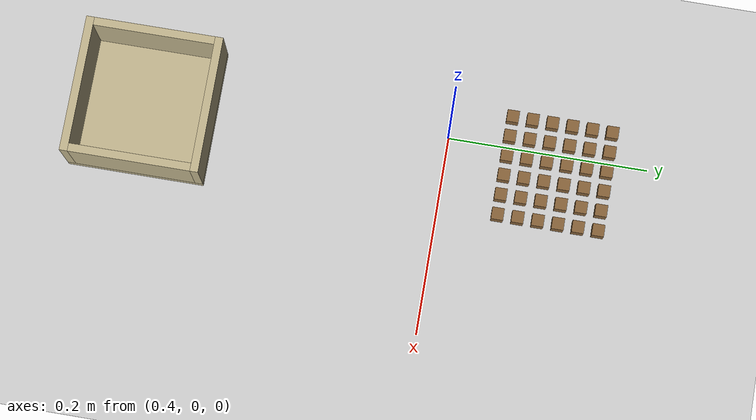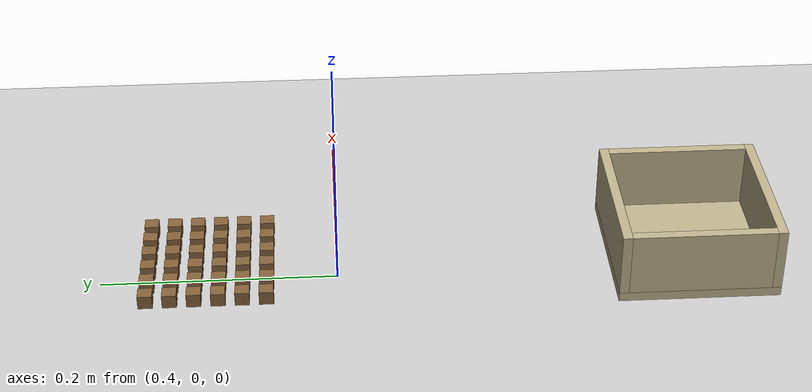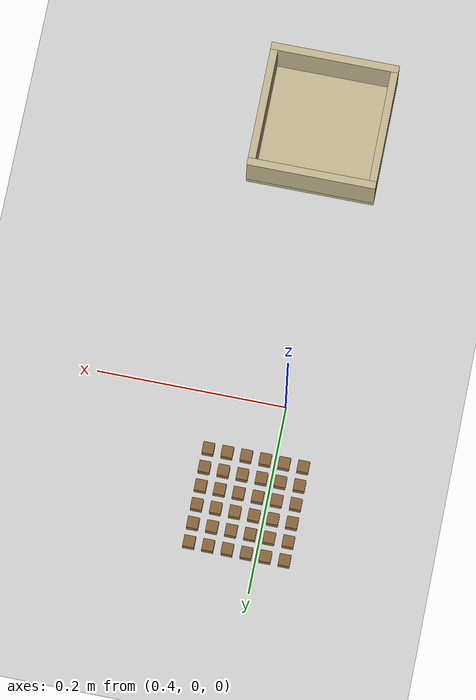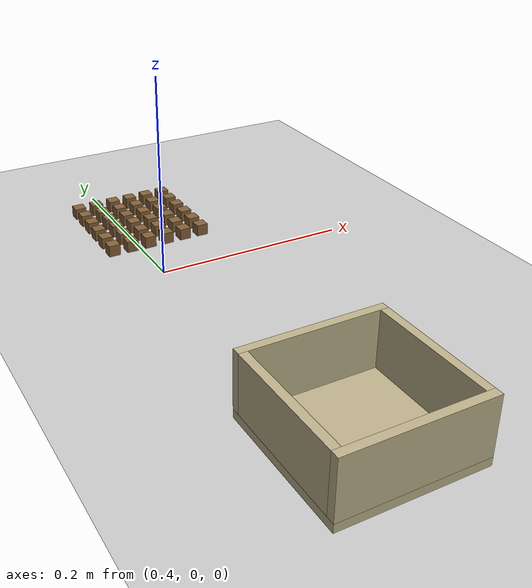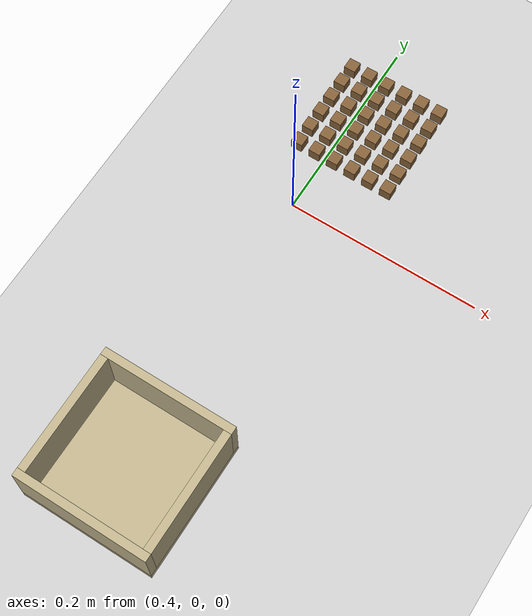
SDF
<sdf version='1.10'>
  <world name='empty'>
    <physics name='1ms' type='ode'>
      <max_step_size>0.001</max_step_size>
      <real_time_factor>1</real_time_factor>
      <real_time_update_rate>1000</real_time_update_rate>
    </physics>
    <plugin name='gz::sim::systems::Physics' filename='gz-sim-physics-system'/>
    <plugin name='gz::sim::systems::UserCommands' filename='gz-sim-user-commands-system'/>
    <plugin filename='gz-sim-imu-system' name='gz::sim::systems::Imu'/>
    <plugin name='gz::sim::systems::SceneBroadcaster' filename='gz-sim-scene-broadcaster-system'/>
    <plugin name='gz::sim::systems::Contact' filename='gz-sim-contact-system'/>
    <plugin name='gz::sim::systems::Sensors' filename='gz-sim-sensors-system'>
      <render_engine>ogre2</render_engine>
    </plugin>
    <gravity>0 0 -9.8000000000000007</gravity>
    <magnetic_field>5.5644999999999998e-06 2.2875799999999999e-05 -4.2388400000000002e-05</magnetic_field>
    <atmosphere type='adiabatic'/>
    <scene>
      <ambient>0.400000006 0.400000006 0.400000006 1</ambient>
      <background>0.699999988 0.699999988 0.699999988 1</background>
      <shadows>true</shadows>
    </scene>
    <model name='ground_plane'>
      <static>true</static>
      <link name='link'>
        <collision name='collision'>
          <geometry><plane><normal>0 0 1</normal><size>100 100</size></plane></geometry>
          <surface>
            <friction>
              <ode>
                <mu>0.75</mu>
                <mu2>0.75</mu2>
              </ode>
            </friction>
            <bounce>
              <restitution_coefficient>0.0</restitution_coefficient>
            </bounce>
            <contact/>
          </surface>
        </collision>
        <visual name='visual'>
          <geometry><plane><normal>0 0 1</normal><size>100 100</size></plane></geometry>
          <material>
            <ambient>0.800000012 0.800000012 0.800000012 1</ambient>
            <diffuse>0.800000012 0.800000012 0.800000012 1</diffuse>
            <specular>0.800000012 0.800000012 0.800000012 1</specular>
          </material>
        </visual>
        <pose>0 0 0 0 0 0</pose>
        <inertial>
          <pose>0 0 0 0 0 0</pose>
          <mass>1</mass>
          <inertia><ixx>1</ixx><ixy>0</ixy><ixz>0</ixz>
                   <iyy>1</iyy><iyz>0</iyz><izz>1</izz></inertia>
        </inertial>
        <enable_wind>false</enable_wind>
      </link>
      <pose>0 0 0 0 0 0</pose>
      <self_collide>false</self_collide>
    </model>
    <model name='soil_grain_00'>
      <pose>0.3700 0.0600 0.0070 0 0 0</pose>
      <link name='grain'>
        <inertial>
          <mass>0.003</mass>
          <inertia><ixx>7.200e-08</ixx><ixy>0</ixy><ixz>0</ixz>
                   <iyy>7.200e-08</iyy><iyz>0</iyz><izz>7.200e-08</izz></inertia>
        </inertial>
        <collision name='grain_collision'>
          <geometry><box><size>0.012 0.012 0.012</size></box></geometry>
          <surface>
            <friction><ode><mu>1.1</mu><mu2>1.1</mu2></ode></friction>
            <bounce><restitution_coefficient>0.0</restitution_coefficient></bounce>
            <contact/>
          </surface>
        </collision>
        <visual name='grain_visual'>
          <geometry><box><size>0.012 0.012 0.012</size></box></geometry>
          <material>
            <ambient>0.42 0.31 0.18 1</ambient>
            <diffuse>0.52 0.38 0.22 1</diffuse>
            <specular>0.05 0.05 0.05 1</specular>
          </material>
        </visual>
        <enable_wind>false</enable_wind>
      </link>
      <self_collide>true</self_collide>
    </model>
    <model name='soil_grain_01'>
      <pose>0.3700 0.0800 0.0070 0 0 0</pose>
      <link name='grain'>
        <inertial>
          <mass>0.003</mass>
          <inertia><ixx>7.200e-08</ixx><ixy>0</ixy><ixz>0</ixz>
                   <iyy>7.200e-08</iyy><iyz>0</iyz><izz>7.200e-08</izz></inertia>
        </inertial>
        <collision name='grain_collision'>
          <geometry><box><size>0.012 0.012 0.012</size></box></geometry>
          <surface>
            <friction><ode><mu>1.1</mu><mu2>1.1</mu2></ode></friction>
            <bounce><restitution_coefficient>0.0</restitution_coefficient></bounce>
            <contact/>
          </surface>
        </collision>
        <visual name='grain_visual'>
          <geometry><box><size>0.012 0.012 0.012</size></box></geometry>
          <material>
            <ambient>0.42 0.31 0.18 1</ambient>
            <diffuse>0.52 0.38 0.22 1</diffuse>
            <specular>0.05 0.05 0.05 1</specular>
          </material>
        </visual>
        <enable_wind>false</enable_wind>
      </link>
      <self_collide>true</self_collide>
    </model>
    <model name='soil_grain_02'>
      <pose>0.3700 0.1000 0.0070 0 0 0</pose>
      <link name='grain'>
        <inertial>
          <mass>0.003</mass>
          <inertia><ixx>7.200e-08</ixx><ixy>0</ixy><ixz>0</ixz>
                   <iyy>7.200e-08</iyy><iyz>0</iyz><izz>7.200e-08</izz></inertia>
        </inertial>
        <collision name='grain_collision'>
          <geometry><box><size>0.012 0.012 0.012</size></box></geometry>
          <surface>
            <friction><ode><mu>1.1</mu><mu2>1.1</mu2></ode></friction>
            <bounce><restitution_coefficient>0.0</restitution_coefficient></bounce>
            <contact/>
          </surface>
        </collision>
        <visual name='grain_visual'>
          <geometry><box><size>0.012 0.012 0.012</size></box></geometry>
          <material>
            <ambient>0.42 0.31 0.18 1</ambient>
            <diffuse>0.52 0.38 0.22 1</diffuse>
            <specular>0.05 0.05 0.05 1</specular>
          </material>
        </visual>
        <enable_wind>false</enable_wind>
      </link>
      <self_collide>true</self_collide>
    </model>
    <model name='soil_grain_03'>
      <pose>0.3700 0.1200 0.0070 0 0 0</pose>
      <link name='grain'>
        <inertial>
          <mass>0.003</mass>
          <inertia><ixx>7.200e-08</ixx><ixy>0</ixy><ixz>0</ixz>
                   <iyy>7.200e-08</iyy><iyz>0</iyz><izz>7.200e-08</izz></inertia>
        </inertial>
        <collision name='grain_collision'>
          <geometry><box><size>0.012 0.012 0.012</size></box></geometry>
          <surface>
            <friction><ode><mu>1.1</mu><mu2>1.1</mu2></ode></friction>
            <bounce><restitution_coefficient>0.0</restitution_coefficient></bounce>
            <contact/>
          </surface>
        </collision>
        <visual name='grain_visual'>
          <geometry><box><size>0.012 0.012 0.012</size></box></geometry>
          <material>
            <ambient>0.42 0.31 0.18 1</ambient>
            <diffuse>0.52 0.38 0.22 1</diffuse>
            <specular>0.05 0.05 0.05 1</specular>
          </material>
        </visual>
        <enable_wind>false</enable_wind>
      </link>
      <self_collide>true</self_collide>
    </model>
    <model name='soil_grain_04'>
      <pose>0.3700 0.1400 0.0070 0 0 0</pose>
      <link name='grain'>
        <inertial>
          <mass>0.003</mass>
          <inertia><ixx>7.200e-08</ixx><ixy>0</ixy><ixz>0</ixz>
                   <iyy>7.200e-08</iyy><iyz>0</iyz><izz>7.200e-08</izz></inertia>
        </inertial>
        <collision name='grain_collision'>
          <geometry><box><size>0.012 0.012 0.012</size></box></geometry>
          <surface>
            <friction><ode><mu>1.1</mu><mu2>1.1</mu2></ode></friction>
            <bounce><restitution_coefficient>0.0</restitution_coefficient></bounce>
            <contact/>
          </surface>
        </collision>
        <visual name='grain_visual'>
          <geometry><box><size>0.012 0.012 0.012</size></box></geometry>
          <material>
            <ambient>0.42 0.31 0.18 1</ambient>
            <diffuse>0.52 0.38 0.22 1</diffuse>
            <specular>0.05 0.05 0.05 1</specular>
          </material>
        </visual>
        <enable_wind>false</enable_wind>
      </link>
      <self_collide>true</self_collide>
    </model>
    <model name='soil_grain_05'>
      <pose>0.3700 0.1600 0.0070 0 0 0</pose>
      <link name='grain'>
        <inertial>
          <mass>0.003</mass>
          <inertia><ixx>7.200e-08</ixx><ixy>0</ixy><ixz>0</ixz>
                   <iyy>7.200e-08</iyy><iyz>0</iyz><izz>7.200e-08</izz></inertia>
        </inertial>
        <collision name='grain_collision'>
          <geometry><box><size>0.012 0.012 0.012</size></box></geometry>
          <surface>
            <friction><ode><mu>1.1</mu><mu2>1.1</mu2></ode></friction>
            <bounce><restitution_coefficient>0.0</restitution_coefficient></bounce>
            <contact/>
          </surface>
        </collision>
        <visual name='grain_visual'>
          <geometry><box><size>0.012 0.012 0.012</size></box></geometry>
          <material>
            <ambient>0.42 0.31 0.18 1</ambient>
            <diffuse>0.52 0.38 0.22 1</diffuse>
            <specular>0.05 0.05 0.05 1</specular>
          </material>
        </visual>
        <enable_wind>false</enable_wind>
      </link>
      <self_collide>true</self_collide>
    </model>
    <model name='soil_grain_06'>
      <pose>0.3900 0.0600 0.0070 0 0 0</pose>
      <link name='grain'>
        <inertial>
          <mass>0.003</mass>
          <inertia><ixx>7.200e-08</ixx><ixy>0</ixy><ixz>0</ixz>
                   <iyy>7.200e-08</iyy><iyz>0</iyz><izz>7.200e-08</izz></inertia>
        </inertial>
        <collision name='grain_collision'>
          <geometry><box><size>0.012 0.012 0.012</size></box></geometry>
          <surface>
            <friction><ode><mu>1.1</mu><mu2>1.1</mu2></ode></friction>
            <bounce><restitution_coefficient>0.0</restitution_coefficient></bounce>
            <contact/>
          </surface>
        </collision>
        <visual name='grain_visual'>
          <geometry><box><size>0.012 0.012 0.012</size></box></geometry>
          <material>
            <ambient>0.42 0.31 0.18 1</ambient>
            <diffuse>0.52 0.38 0.22 1</diffuse>
            <specular>0.05 0.05 0.05 1</specular>
          </material>
        </visual>
        <enable_wind>false</enable_wind>
      </link>
      <self_collide>true</self_collide>
    </model>
    <model name='soil_grain_07'>
      <pose>0.3900 0.0800 0.0070 0 0 0</pose>
      <link name='grain'>
        <inertial>
          <mass>0.003</mass>
          <inertia><ixx>7.200e-08</ixx><ixy>0</ixy><ixz>0</ixz>
                   <iyy>7.200e-08</iyy><iyz>0</iyz><izz>7.200e-08</izz></inertia>
        </inertial>
        <collision name='grain_collision'>
          <geometry><box><size>0.012 0.012 0.012</size></box></geometry>
          <surface>
            <friction><ode><mu>1.1</mu><mu2>1.1</mu2></ode></friction>
            <bounce><restitution_coefficient>0.0</restitution_coefficient></bounce>
            <contact/>
          </surface>
        </collision>
        <visual name='grain_visual'>
          <geometry><box><size>0.012 0.012 0.012</size></box></geometry>
          <material>
            <ambient>0.42 0.31 0.18 1</ambient>
            <diffuse>0.52 0.38 0.22 1</diffuse>
            <specular>0.05 0.05 0.05 1</specular>
          </material>
        </visual>
        <enable_wind>false</enable_wind>
      </link>
      <self_collide>true</self_collide>
    </model>
    <model name='soil_grain_08'>
      <pose>0.3900 0.1000 0.0070 0 0 0</pose>
      <link name='grain'>
        <inertial>
          <mass>0.003</mass>
          <inertia><ixx>7.200e-08</ixx><ixy>0</ixy><ixz>0</ixz>
                   <iyy>7.200e-08</iyy><iyz>0</iyz><izz>7.200e-08</izz></inertia>
        </inertial>
        <collision name='grain_collision'>
          <geometry><box><size>0.012 0.012 0.012</size></box></geometry>
          <surface>
            <friction><ode><mu>1.1</mu><mu2>1.1</mu2></ode></friction>
            <bounce><restitution_coefficient>0.0</restitution_coefficient></bounce>
            <contact/>
          </surface>
        </collision>
        <visual name='grain_visual'>
          <geometry><box><size>0.012 0.012 0.012</size></box></geometry>
          <material>
            <ambient>0.42 0.31 0.18 1</ambient>
            <diffuse>0.52 0.38 0.22 1</diffuse>
            <specular>0.05 0.05 0.05 1</specular>
          </material>
        </visual>
        <enable_wind>false</enable_wind>
      </link>
      <self_collide>true</self_collide>
    </model>
    <model name='soil_grain_09'>
      <pose>0.3900 0.1200 0.0070 0 0 0</pose>
      <link name='grain'>
        <inertial>
          <mass>0.003</mass>
          <inertia><ixx>7.200e-08</ixx><ixy>0</ixy><ixz>0</ixz>
                   <iyy>7.200e-08</iyy><iyz>0</iyz><izz>7.200e-08</izz></inertia>
        </inertial>
        <collision name='grain_collision'>
          <geometry><box><size>0.012 0.012 0.012</size></box></geometry>
          <surface>
            <friction><ode><mu>1.1</mu><mu2>1.1</mu2></ode></friction>
            <bounce><restitution_coefficient>0.0</restitution_coefficient></bounce>
            <contact/>
          </surface>
        </collision>
        <visual name='grain_visual'>
          <geometry><box><size>0.012 0.012 0.012</size></box></geometry>
          <material>
            <ambient>0.42 0.31 0.18 1</ambient>
            <diffuse>0.52 0.38 0.22 1</diffuse>
            <specular>0.05 0.05 0.05 1</specular>
          </material>
        </visual>
        <enable_wind>false</enable_wind>
      </link>
      <self_collide>true</self_collide>
    </model>
    <model name='soil_grain_10'>
      <pose>0.3900 0.1400 0.0070 0 0 0</pose>
      <link name='grain'>
        <inertial>
          <mass>0.003</mass>
          <inertia><ixx>7.200e-08</ixx><ixy>0</ixy><ixz>0</ixz>
                   <iyy>7.200e-08</iyy><iyz>0</iyz><izz>7.200e-08</izz></inertia>
        </inertial>
        <collision name='grain_collision'>
          <geometry><box><size>0.012 0.012 0.012</size></box></geometry>
          <surface>
            <friction><ode><mu>1.1</mu><mu2>1.1</mu2></ode></friction>
            <bounce><restitution_coefficient>0.0</restitution_coefficient></bounce>
            <contact/>
          </surface>
        </collision>
        <visual name='grain_visual'>
          <geometry><box><size>0.012 0.012 0.012</size></box></geometry>
          <material>
            <ambient>0.42 0.31 0.18 1</ambient>
            <diffuse>0.52 0.38 0.22 1</diffuse>
            <specular>0.05 0.05 0.05 1</specular>
          </material>
        </visual>
        <enable_wind>false</enable_wind>
      </link>
      <self_collide>true</self_collide>
    </model>
    <model name='soil_grain_11'>
      <pose>0.3900 0.1600 0.0070 0 0 0</pose>
      <link name='grain'>
        <inertial>
          <mass>0.003</mass>
          <inertia><ixx>7.200e-08</ixx><ixy>0</ixy><ixz>0</ixz>
                   <iyy>7.200e-08</iyy><iyz>0</iyz><izz>7.200e-08</izz></inertia>
        </inertial>
        <collision name='grain_collision'>
          <geometry><box><size>0.012 0.012 0.012</size></box></geometry>
          <surface>
            <friction><ode><mu>1.1</mu><mu2>1.1</mu2></ode></friction>
            <bounce><restitution_coefficient>0.0</restitution_coefficient></bounce>
            <contact/>
          </surface>
        </collision>
        <visual name='grain_visual'>
          <geometry><box><size>0.012 0.012 0.012</size></box></geometry>
          <material>
            <ambient>0.42 0.31 0.18 1</ambient>
            <diffuse>0.52 0.38 0.22 1</diffuse>
            <specular>0.05 0.05 0.05 1</specular>
          </material>
        </visual>
        <enable_wind>false</enable_wind>
      </link>
      <self_collide>true</self_collide>
    </model>
    <model name='soil_grain_12'>
      <pose>0.4100 0.0600 0.0070 0 0 0</pose>
      <link name='grain'>
        <inertial>
          <mass>0.003</mass>
          <inertia><ixx>7.200e-08</ixx><ixy>0</ixy><ixz>0</ixz>
                   <iyy>7.200e-08</iyy><iyz>0</iyz><izz>7.200e-08</izz></inertia>
        </inertial>
        <collision name='grain_collision'>
          <geometry><box><size>0.012 0.012 0.012</size></box></geometry>
          <surface>
            <friction><ode><mu>1.1</mu><mu2>1.1</mu2></ode></friction>
            <bounce><restitution_coefficient>0.0</restitution_coefficient></bounce>
            <contact/>
          </surface>
        </collision>
        <visual name='grain_visual'>
          <geometry><box><size>0.012 0.012 0.012</size></box></geometry>
          <material>
            <ambient>0.42 0.31 0.18 1</ambient>
            <diffuse>0.52 0.38 0.22 1</diffuse>
            <specular>0.05 0.05 0.05 1</specular>
          </material>
        </visual>
        <enable_wind>false</enable_wind>
      </link>
      <self_collide>true</self_collide>
    </model>
    <model name='soil_grain_13'>
      <pose>0.4100 0.0800 0.0070 0 0 0</pose>
      <link name='grain'>
        <inertial>
          <mass>0.003</mass>
          <inertia><ixx>7.200e-08</ixx><ixy>0</ixy><ixz>0</ixz>
                   <iyy>7.200e-08</iyy><iyz>0</iyz><izz>7.200e-08</izz></inertia>
        </inertial>
        <collision name='grain_collision'>
          <geometry><box><size>0.012 0.012 0.012</size></box></geometry>
          <surface>
            <friction><ode><mu>1.1</mu><mu2>1.1</mu2></ode></friction>
            <bounce><restitution_coefficient>0.0</restitution_coefficient></bounce>
            <contact/>
          </surface>
        </collision>
        <visual name='grain_visual'>
          <geometry><box><size>0.012 0.012 0.012</size></box></geometry>
          <material>
            <ambient>0.42 0.31 0.18 1</ambient>
            <diffuse>0.52 0.38 0.22 1</diffuse>
            <specular>0.05 0.05 0.05 1</specular>
          </material>
        </visual>
        <enable_wind>false</enable_wind>
      </link>
      <self_collide>true</self_collide>
    </model>
    <model name='soil_grain_14'>
      <pose>0.4100 0.1000 0.0070 0 0 0</pose>
      <link name='grain'>
        <inertial>
          <mass>0.003</mass>
          <inertia><ixx>7.200e-08</ixx><ixy>0</ixy><ixz>0</ixz>
                   <iyy>7.200e-08</iyy><iyz>0</iyz><izz>7.200e-08</izz></inertia>
        </inertial>
        <collision name='grain_collision'>
          <geometry><box><size>0.012 0.012 0.012</size></box></geometry>
          <surface>
            <friction><ode><mu>1.1</mu><mu2>1.1</mu2></ode></friction>
            <bounce><restitution_coefficient>0.0</restitution_coefficient></bounce>
            <contact/>
          </surface>
        </collision>
        <visual name='grain_visual'>
          <geometry><box><size>0.012 0.012 0.012</size></box></geometry>
          <material>
            <ambient>0.42 0.31 0.18 1</ambient>
            <diffuse>0.52 0.38 0.22 1</diffuse>
            <specular>0.05 0.05 0.05 1</specular>
          </material>
        </visual>
        <enable_wind>false</enable_wind>
      </link>
      <self_collide>true</self_collide>
    </model>
    <model name='soil_grain_15'>
      <pose>0.4100 0.1200 0.0070 0 0 0</pose>
      <link name='grain'>
        <inertial>
          <mass>0.003</mass>
          <inertia><ixx>7.200e-08</ixx><ixy>0</ixy><ixz>0</ixz>
                   <iyy>7.200e-08</iyy><iyz>0</iyz><izz>7.200e-08</izz></inertia>
        </inertial>
        <collision name='grain_collision'>
          <geometry><box><size>0.012 0.012 0.012</size></box></geometry>
          <surface>
            <friction><ode><mu>1.1</mu><mu2>1.1</mu2></ode></friction>
            <bounce><restitution_coefficient>0.0</restitution_coefficient></bounce>
            <contact/>
          </surface>
        </collision>
        <visual name='grain_visual'>
          <geometry><box><size>0.012 0.012 0.012</size></box></geometry>
          <material>
            <ambient>0.42 0.31 0.18 1</ambient>
            <diffuse>0.52 0.38 0.22 1</diffuse>
            <specular>0.05 0.05 0.05 1</specular>
          </material>
        </visual>
        <enable_wind>false</enable_wind>
      </link>
      <self_collide>true</self_collide>
    </model>
    <model name='soil_grain_16'>
      <pose>0.4100 0.1400 0.0070 0 0 0</pose>
      <link name='grain'>
        <inertial>
          <mass>0.003</mass>
          <inertia><ixx>7.200e-08</ixx><ixy>0</ixy><ixz>0</ixz>
                   <iyy>7.200e-08</iyy><iyz>0</iyz><izz>7.200e-08</izz></inertia>
        </inertial>
        <collision name='grain_collision'>
          <geometry><box><size>0.012 0.012 0.012</size></box></geometry>
          <surface>
            <friction><ode><mu>1.1</mu><mu2>1.1</mu2></ode></friction>
            <bounce><restitution_coefficient>0.0</restitution_coefficient></bounce>
            <contact/>
          </surface>
        </collision>
        <visual name='grain_visual'>
          <geometry><box><size>0.012 0.012 0.012</size></box></geometry>
          <material>
            <ambient>0.42 0.31 0.18 1</ambient>
            <diffuse>0.52 0.38 0.22 1</diffuse>
            <specular>0.05 0.05 0.05 1</specular>
          </material>
        </visual>
        <enable_wind>false</enable_wind>
      </link>
      <self_collide>true</self_collide>
    </model>
    <model name='soil_grain_17'>
      <pose>0.4100 0.1600 0.0070 0 0 0</pose>
      <link name='grain'>
        <inertial>
          <mass>0.003</mass>
          <inertia><ixx>7.200e-08</ixx><ixy>0</ixy><ixz>0</ixz>
                   <iyy>7.200e-08</iyy><iyz>0</iyz><izz>7.200e-08</izz></inertia>
        </inertial>
        <collision name='grain_collision'>
          <geometry><box><size>0.012 0.012 0.012</size></box></geometry>
          <surface>
            <friction><ode><mu>1.1</mu><mu2>1.1</mu2></ode></friction>
            <bounce><restitution_coefficient>0.0</restitution_coefficient></bounce>
            <contact/>
          </surface>
        </collision>
        <visual name='grain_visual'>
          <geometry><box><size>0.012 0.012 0.012</size></box></geometry>
          <material>
            <ambient>0.42 0.31 0.18 1</ambient>
            <diffuse>0.52 0.38 0.22 1</diffuse>
            <specular>0.05 0.05 0.05 1</specular>
          </material>
        </visual>
        <enable_wind>false</enable_wind>
      </link>
      <self_collide>true</self_collide>
    </model>
    <model name='soil_grain_18'>
      <pose>0.4300 0.0600 0.0070 0 0 0</pose>
      <link name='grain'>
        <inertial>
          <mass>0.003</mass>
          <inertia><ixx>7.200e-08</ixx><ixy>0</ixy><ixz>0</ixz>
                   <iyy>7.200e-08</iyy><iyz>0</iyz><izz>7.200e-08</izz></inertia>
        </inertial>
        <collision name='grain_collision'>
          <geometry><box><size>0.012 0.012 0.012</size></box></geometry>
          <surface>
            <friction><ode><mu>1.1</mu><mu2>1.1</mu2></ode></friction>
            <bounce><restitution_coefficient>0.0</restitution_coefficient></bounce>
            <contact/>
          </surface>
        </collision>
        <visual name='grain_visual'>
          <geometry><box><size>0.012 0.012 0.012</size></box></geometry>
          <material>
            <ambient>0.42 0.31 0.18 1</ambient>
            <diffuse>0.52 0.38 0.22 1</diffuse>
            <specular>0.05 0.05 0.05 1</specular>
          </material>
        </visual>
        <enable_wind>false</enable_wind>
      </link>
      <self_collide>true</self_collide>
    </model>
    <model name='soil_grain_19'>
      <pose>0.4300 0.0800 0.0070 0 0 0</pose>
      <link name='grain'>
        <inertial>
          <mass>0.003</mass>
          <inertia><ixx>7.200e-08</ixx><ixy>0</ixy><ixz>0</ixz>
                   <iyy>7.200e-08</iyy><iyz>0</iyz><izz>7.200e-08</izz></inertia>
        </inertial>
        <collision name='grain_collision'>
          <geometry><box><size>0.012 0.012 0.012</size></box></geometry>
          <surface>
            <friction><ode><mu>1.1</mu><mu2>1.1</mu2></ode></friction>
            <bounce><restitution_coefficient>0.0</restitution_coefficient></bounce>
            <contact/>
          </surface>
        </collision>
        <visual name='grain_visual'>
          <geometry><box><size>0.012 0.012 0.012</size></box></geometry>
          <material>
            <ambient>0.42 0.31 0.18 1</ambient>
            <diffuse>0.52 0.38 0.22 1</diffuse>
            <specular>0.05 0.05 0.05 1</specular>
          </material>
        </visual>
        <enable_wind>false</enable_wind>
      </link>
      <self_collide>true</self_collide>
    </model>
    <model name='soil_grain_20'>
      <pose>0.4300 0.1000 0.0070 0 0 0</pose>
      <link name='grain'>
        <inertial>
          <mass>0.003</mass>
          <inertia><ixx>7.200e-08</ixx><ixy>0</ixy><ixz>0</ixz>
                   <iyy>7.200e-08</iyy><iyz>0</iyz><izz>7.200e-08</izz></inertia>
        </inertial>
        <collision name='grain_collision'>
          <geometry><box><size>0.012 0.012 0.012</size></box></geometry>
          <surface>
            <friction><ode><mu>1.1</mu><mu2>1.1</mu2></ode></friction>
            <bounce><restitution_coefficient>0.0</restitution_coefficient></bounce>
            <contact/>
          </surface>
        </collision>
        <visual name='grain_visual'>
          <geometry><box><size>0.012 0.012 0.012</size></box></geometry>
          <material>
            <ambient>0.42 0.31 0.18 1</ambient>
            <diffuse>0.52 0.38 0.22 1</diffuse>
            <specular>0.05 0.05 0.05 1</specular>
          </material>
        </visual>
        <enable_wind>false</enable_wind>
      </link>
      <self_collide>true</self_collide>
    </model>
    <model name='soil_grain_21'>
      <pose>0.4300 0.1200 0.0070 0 0 0</pose>
      <link name='grain'>
        <inertial>
          <mass>0.003</mass>
          <inertia><ixx>7.200e-08</ixx><ixy>0</ixy><ixz>0</ixz>
                   <iyy>7.200e-08</iyy><iyz>0</iyz><izz>7.200e-08</izz></inertia>
        </inertial>
        <collision name='grain_collision'>
          <geometry><box><size>0.012 0.012 0.012</size></box></geometry>
          <surface>
            <friction><ode><mu>1.1</mu><mu2>1.1</mu2></ode></friction>
            <bounce><restitution_coefficient>0.0</restitution_coefficient></bounce>
            <contact/>
          </surface>
        </collision>
        <visual name='grain_visual'>
          <geometry><box><size>0.012 0.012 0.012</size></box></geometry>
          <material>
            <ambient>0.42 0.31 0.18 1</ambient>
            <diffuse>0.52 0.38 0.22 1</diffuse>
            <specular>0.05 0.05 0.05 1</specular>
          </material>
        </visual>
        <enable_wind>false</enable_wind>
      </link>
      <self_collide>true</self_collide>
    </model>
    <model name='soil_grain_22'>
      <pose>0.4300 0.1400 0.0070 0 0 0</pose>
      <link name='grain'>
        <inertial>
          <mass>0.003</mass>
          <inertia><ixx>7.200e-08</ixx><ixy>0</ixy><ixz>0</ixz>
                   <iyy>7.200e-08</iyy><iyz>0</iyz><izz>7.200e-08</izz></inertia>
        </inertial>
        <collision name='grain_collision'>
          <geometry><box><size>0.012 0.012 0.012</size></box></geometry>
          <surface>
            <friction><ode><mu>1.1</mu><mu2>1.1</mu2></ode></friction>
            <bounce><restitution_coefficient>0.0</restitution_coefficient></bounce>
            <contact/>
          </surface>
        </collision>
        <visual name='grain_visual'>
          <geometry><box><size>0.012 0.012 0.012</size></box></geometry>
          <material>
            <ambient>0.42 0.31 0.18 1</ambient>
            <diffuse>0.52 0.38 0.22 1</diffuse>
            <specular>0.05 0.05 0.05 1</specular>
          </material>
        </visual>
        <enable_wind>false</enable_wind>
      </link>
      <self_collide>true</self_collide>
    </model>
    <model name='soil_grain_23'>
      <pose>0.4300 0.1600 0.0070 0 0 0</pose>
      <link name='grain'>
        <inertial>
          <mass>0.003</mass>
          <inertia><ixx>7.200e-08</ixx><ixy>0</ixy><ixz>0</ixz>
                   <iyy>7.200e-08</iyy><iyz>0</iyz><izz>7.200e-08</izz></inertia>
        </inertial>
        <collision name='grain_collision'>
          <geometry><box><size>0.012 0.012 0.012</size></box></geometry>
          <surface>
            <friction><ode><mu>1.1</mu><mu2>1.1</mu2></ode></friction>
            <bounce><restitution_coefficient>0.0</restitution_coefficient></bounce>
            <contact/>
          </surface>
        </collision>
        <visual name='grain_visual'>
          <geometry><box><size>0.012 0.012 0.012</size></box></geometry>
          <material>
            <ambient>0.42 0.31 0.18 1</ambient>
            <diffuse>0.52 0.38 0.22 1</diffuse>
            <specular>0.05 0.05 0.05 1</specular>
          </material>
        </visual>
        <enable_wind>false</enable_wind>
      </link>
      <self_collide>true</self_collide>
    </model>
    <model name='soil_grain_24'>
      <pose>0.4500 0.0600 0.0070 0 0 0</pose>
      <link name='grain'>
        <inertial>
          <mass>0.003</mass>
          <inertia><ixx>7.200e-08</ixx><ixy>0</ixy><ixz>0</ixz>
                   <iyy>7.200e-08</iyy><iyz>0</iyz><izz>7.200e-08</izz></inertia>
        </inertial>
        <collision name='grain_collision'>
          <geometry><box><size>0.012 0.012 0.012</size></box></geometry>
          <surface>
            <friction><ode><mu>1.1</mu><mu2>1.1</mu2></ode></friction>
            <bounce><restitution_coefficient>0.0</restitution_coefficient></bounce>
            <contact/>
          </surface>
        </collision>
        <visual name='grain_visual'>
          <geometry><box><size>0.012 0.012 0.012</size></box></geometry>
          <material>
            <ambient>0.42 0.31 0.18 1</ambient>
            <diffuse>0.52 0.38 0.22 1</diffuse>
            <specular>0.05 0.05 0.05 1</specular>
          </material>
        </visual>
        <enable_wind>false</enable_wind>
      </link>
      <self_collide>true</self_collide>
    </model>
    <model name='soil_grain_25'>
      <pose>0.4500 0.0800 0.0070 0 0 0</pose>
      <link name='grain'>
        <inertial>
          <mass>0.003</mass>
          <inertia><ixx>7.200e-08</ixx><ixy>0</ixy><ixz>0</ixz>
                   <iyy>7.200e-08</iyy><iyz>0</iyz><izz>7.200e-08</izz></inertia>
        </inertial>
        <collision name='grain_collision'>
          <geometry><box><size>0.012 0.012 0.012</size></box></geometry>
          <surface>
            <friction><ode><mu>1.1</mu><mu2>1.1</mu2></ode></friction>
            <bounce><restitution_coefficient>0.0</restitution_coefficient></bounce>
            <contact/>
          </surface>
        </collision>
        <visual name='grain_visual'>
          <geometry><box><size>0.012 0.012 0.012</size></box></geometry>
          <material>
            <ambient>0.42 0.31 0.18 1</ambient>
            <diffuse>0.52 0.38 0.22 1</diffuse>
            <specular>0.05 0.05 0.05 1</specular>
          </material>
        </visual>
        <enable_wind>false</enable_wind>
      </link>
      <self_collide>true</self_collide>
    </model>
    <model name='soil_grain_26'>
      <pose>0.4500 0.1000 0.0070 0 0 0</pose>
      <link name='grain'>
        <inertial>
          <mass>0.003</mass>
          <inertia><ixx>7.200e-08</ixx><ixy>0</ixy><ixz>0</ixz>
                   <iyy>7.200e-08</iyy><iyz>0</iyz><izz>7.200e-08</izz></inertia>
        </inertial>
        <collision name='grain_collision'>
          <geometry><box><size>0.012 0.012 0.012</size></box></geometry>
          <surface>
            <friction><ode><mu>1.1</mu><mu2>1.1</mu2></ode></friction>
            <bounce><restitution_coefficient>0.0</restitution_coefficient></bounce>
            <contact/>
          </surface>
        </collision>
        <visual name='grain_visual'>
          <geometry><box><size>0.012 0.012 0.012</size></box></geometry>
          <material>
            <ambient>0.42 0.31 0.18 1</ambient>
            <diffuse>0.52 0.38 0.22 1</diffuse>
            <specular>0.05 0.05 0.05 1</specular>
          </material>
        </visual>
        <enable_wind>false</enable_wind>
      </link>
      <self_collide>true</self_collide>
    </model>
    <model name='soil_grain_27'>
      <pose>0.4500 0.1200 0.0070 0 0 0</pose>
      <link name='grain'>
        <inertial>
          <mass>0.003</mass>
          <inertia><ixx>7.200e-08</ixx><ixy>0</ixy><ixz>0</ixz>
                   <iyy>7.200e-08</iyy><iyz>0</iyz><izz>7.200e-08</izz></inertia>
        </inertial>
        <collision name='grain_collision'>
          <geometry><box><size>0.012 0.012 0.012</size></box></geometry>
          <surface>
            <friction><ode><mu>1.1</mu><mu2>1.1</mu2></ode></friction>
            <bounce><restitution_coefficient>0.0</restitution_coefficient></bounce>
            <contact/>
          </surface>
        </collision>
        <visual name='grain_visual'>
          <geometry><box><size>0.012 0.012 0.012</size></box></geometry>
          <material>
            <ambient>0.42 0.31 0.18 1</ambient>
            <diffuse>0.52 0.38 0.22 1</diffuse>
            <specular>0.05 0.05 0.05 1</specular>
          </material>
        </visual>
        <enable_wind>false</enable_wind>
      </link>
      <self_collide>true</self_collide>
    </model>
    <model name='soil_grain_28'>
      <pose>0.4500 0.1400 0.0070 0 0 0</pose>
      <link name='grain'>
        <inertial>
          <mass>0.003</mass>
          <inertia><ixx>7.200e-08</ixx><ixy>0</ixy><ixz>0</ixz>
                   <iyy>7.200e-08</iyy><iyz>0</iyz><izz>7.200e-08</izz></inertia>
        </inertial>
        <collision name='grain_collision'>
          <geometry><box><size>0.012 0.012 0.012</size></box></geometry>
          <surface>
            <friction><ode><mu>1.1</mu><mu2>1.1</mu2></ode></friction>
            <bounce><restitution_coefficient>0.0</restitution_coefficient></bounce>
            <contact/>
          </surface>
        </collision>
        <visual name='grain_visual'>
          <geometry><box><size>0.012 0.012 0.012</size></box></geometry>
          <material>
            <ambient>0.42 0.31 0.18 1</ambient>
            <diffuse>0.52 0.38 0.22 1</diffuse>
            <specular>0.05 0.05 0.05 1</specular>
          </material>
        </visual>
        <enable_wind>false</enable_wind>
      </link>
      <self_collide>true</self_collide>
    </model>
    <model name='soil_grain_29'>
      <pose>0.4500 0.1600 0.0070 0 0 0</pose>
      <link name='grain'>
        <inertial>
          <mass>0.003</mass>
          <inertia><ixx>7.200e-08</ixx><ixy>0</ixy><ixz>0</ixz>
                   <iyy>7.200e-08</iyy><iyz>0</iyz><izz>7.200e-08</izz></inertia>
        </inertial>
        <collision name='grain_collision'>
          <geometry><box><size>0.012 0.012 0.012</size></box></geometry>
          <surface>
            <friction><ode><mu>1.1</mu><mu2>1.1</mu2></ode></friction>
            <bounce><restitution_coefficient>0.0</restitution_coefficient></bounce>
            <contact/>
          </surface>
        </collision>
        <visual name='grain_visual'>
          <geometry><box><size>0.012 0.012 0.012</size></box></geometry>
          <material>
            <ambient>0.42 0.31 0.18 1</ambient>
            <diffuse>0.52 0.38 0.22 1</diffuse>
            <specular>0.05 0.05 0.05 1</specular>
          </material>
        </visual>
        <enable_wind>false</enable_wind>
      </link>
      <self_collide>true</self_collide>
    </model>
    <model name='soil_grain_30'>
      <pose>0.4700 0.0600 0.0070 0 0 0</pose>
      <link name='grain'>
        <inertial>
          <mass>0.003</mass>
          <inertia><ixx>7.200e-08</ixx><ixy>0</ixy><ixz>0</ixz>
                   <iyy>7.200e-08</iyy><iyz>0</iyz><izz>7.200e-08</izz></inertia>
        </inertial>
        <collision name='grain_collision'>
          <geometry><box><size>0.012 0.012 0.012</size></box></geometry>
          <surface>
            <friction><ode><mu>1.1</mu><mu2>1.1</mu2></ode></friction>
            <bounce><restitution_coefficient>0.0</restitution_coefficient></bounce>
            <contact/>
          </surface>
        </collision>
        <visual name='grain_visual'>
          <geometry><box><size>0.012 0.012 0.012</size></box></geometry>
          <material>
            <ambient>0.42 0.31 0.18 1</ambient>
            <diffuse>0.52 0.38 0.22 1</diffuse>
            <specular>0.05 0.05 0.05 1</specular>
          </material>
        </visual>
        <enable_wind>false</enable_wind>
      </link>
      <self_collide>true</self_collide>
    </model>
    <model name='soil_grain_31'>
      <pose>0.4700 0.0800 0.0070 0 0 0</pose>
      <link name='grain'>
        <inertial>
          <mass>0.003</mass>
          <inertia><ixx>7.200e-08</ixx><ixy>0</ixy><ixz>0</ixz>
                   <iyy>7.200e-08</iyy><iyz>0</iyz><izz>7.200e-08</izz></inertia>
        </inertial>
        <collision name='grain_collision'>
          <geometry><box><size>0.012 0.012 0.012</size></box></geometry>
          <surface>
            <friction><ode><mu>1.1</mu><mu2>1.1</mu2></ode></friction>
            <bounce><restitution_coefficient>0.0</restitution_coefficient></bounce>
            <contact/>
          </surface>
        </collision>
        <visual name='grain_visual'>
          <geometry><box><size>0.012 0.012 0.012</size></box></geometry>
          <material>
            <ambient>0.42 0.31 0.18 1</ambient>
            <diffuse>0.52 0.38 0.22 1</diffuse>
            <specular>0.05 0.05 0.05 1</specular>
          </material>
        </visual>
        <enable_wind>false</enable_wind>
      </link>
      <self_collide>true</self_collide>
    </model>
    <model name='soil_grain_32'>
      <pose>0.4700 0.1000 0.0070 0 0 0</pose>
      <link name='grain'>
        <inertial>
          <mass>0.003</mass>
          <inertia><ixx>7.200e-08</ixx><ixy>0</ixy><ixz>0</ixz>
                   <iyy>7.200e-08</iyy><iyz>0</iyz><izz>7.200e-08</izz></inertia>
        </inertial>
        <collision name='grain_collision'>
          <geometry><box><size>0.012 0.012 0.012</size></box></geometry>
          <surface>
            <friction><ode><mu>1.1</mu><mu2>1.1</mu2></ode></friction>
            <bounce><restitution_coefficient>0.0</restitution_coefficient></bounce>
            <contact/>
          </surface>
        </collision>
        <visual name='grain_visual'>
          <geometry><box><size>0.012 0.012 0.012</size></box></geometry>
          <material>
            <ambient>0.42 0.31 0.18 1</ambient>
            <diffuse>0.52 0.38 0.22 1</diffuse>
            <specular>0.05 0.05 0.05 1</specular>
          </material>
        </visual>
        <enable_wind>false</enable_wind>
      </link>
      <self_collide>true</self_collide>
    </model>
    <model name='soil_grain_33'>
      <pose>0.4700 0.1200 0.0070 0 0 0</pose>
      <link name='grain'>
        <inertial>
          <mass>0.003</mass>
          <inertia><ixx>7.200e-08</ixx><ixy>0</ixy><ixz>0</ixz>
                   <iyy>7.200e-08</iyy><iyz>0</iyz><izz>7.200e-08</izz></inertia>
        </inertial>
        <collision name='grain_collision'>
          <geometry><box><size>0.012 0.012 0.012</size></box></geometry>
          <surface>
            <friction><ode><mu>1.1</mu><mu2>1.1</mu2></ode></friction>
            <bounce><restitution_coefficient>0.0</restitution_coefficient></bounce>
            <contact/>
          </surface>
        </collision>
        <visual name='grain_visual'>
          <geometry><box><size>0.012 0.012 0.012</size></box></geometry>
          <material>
            <ambient>0.42 0.31 0.18 1</ambient>
            <diffuse>0.52 0.38 0.22 1</diffuse>
            <specular>0.05 0.05 0.05 1</specular>
          </material>
        </visual>
        <enable_wind>false</enable_wind>
      </link>
      <self_collide>true</self_collide>
    </model>
    <model name='soil_grain_34'>
      <pose>0.4700 0.1400 0.0070 0 0 0</pose>
      <link name='grain'>
        <inertial>
          <mass>0.003</mass>
          <inertia><ixx>7.200e-08</ixx><ixy>0</ixy><ixz>0</ixz>
                   <iyy>7.200e-08</iyy><iyz>0</iyz><izz>7.200e-08</izz></inertia>
        </inertial>
        <collision name='grain_collision'>
          <geometry><box><size>0.012 0.012 0.012</size></box></geometry>
          <surface>
            <friction><ode><mu>1.1</mu><mu2>1.1</mu2></ode></friction>
            <bounce><restitution_coefficient>0.0</restitution_coefficient></bounce>
            <contact/>
          </surface>
        </collision>
        <visual name='grain_visual'>
          <geometry><box><size>0.012 0.012 0.012</size></box></geometry>
          <material>
            <ambient>0.42 0.31 0.18 1</ambient>
            <diffuse>0.52 0.38 0.22 1</diffuse>
            <specular>0.05 0.05 0.05 1</specular>
          </material>
        </visual>
        <enable_wind>false</enable_wind>
      </link>
      <self_collide>true</self_collide>
    </model>
    <model name='soil_grain_35'>
      <pose>0.4700 0.1600 0.0070 0 0 0</pose>
      <link name='grain'>
        <inertial>
          <mass>0.003</mass>
          <inertia><ixx>7.200e-08</ixx><ixy>0</ixy><ixz>0</ixz>
                   <iyy>7.200e-08</iyy><iyz>0</iyz><izz>7.200e-08</izz></inertia>
        </inertial>
        <collision name='grain_collision'>
          <geometry><box><size>0.012 0.012 0.012</size></box></geometry>
          <surface>
            <friction><ode><mu>1.1</mu><mu2>1.1</mu2></ode></friction>
            <bounce><restitution_coefficient>0.0</restitution_coefficient></bounce>
            <contact/>
          </surface>
        </collision>
        <visual name='grain_visual'>
          <geometry><box><size>0.012 0.012 0.012</size></box></geometry>
          <material>
            <ambient>0.42 0.31 0.18 1</ambient>
            <diffuse>0.52 0.38 0.22 1</diffuse>
            <specular>0.05 0.05 0.05 1</specular>
          </material>
        </visual>
        <enable_wind>false</enable_wind>
      </link>
      <self_collide>true</self_collide>
    </model>
    <!-- Deposit target: open box on the ground, 120 mm square, 55 mm rim -->
    <model name='deposit_box'>
      <static>true</static>
      <pose>0.42 -0.3 0 0 0 0</pose>
      <link name='box_link'>
        <inertial>
          <mass>5</mass>
          <inertia><ixx>0.05</ixx><ixy>0</ixy><ixz>0</ixz>
                   <iyy>0.05</iyy><iyz>0</iyz><izz>0.05</izz></inertia>
        </inertial>
        <collision name='box_link_floor_collision'>
          <pose>0 0 0.004 0 0 0</pose>
          <geometry><box><size>0.136 0.136 0.008</size></box></geometry>
          <surface>
            <friction><ode><mu>1.2</mu><mu2>1.2</mu2></ode></friction>
            <bounce><restitution_coefficient>0.0</restitution_coefficient></bounce>
            <contact/>
          </surface>
        </collision>
        <visual name='box_link_floor_visual'>
          <pose>0 0 0.004 0 0 0</pose>
          <geometry><box><size>0.136 0.136 0.008</size></box></geometry>
          <material>
            <ambient>0.75 0.7 0.55 1</ambient>
            <diffuse>0.75 0.7 0.55 1</diffuse>
            <specular>0.1 0.1 0.1 1</specular>
          </material>
        </visual>
        <collision name='box_link_north_collision'>
          <pose>0.0 0.064 0.035500000000000004 0 0 0</pose>
          <geometry><box><size>0.136 0.008 0.055</size></box></geometry>
          <surface>
            <friction><ode><mu>1.2</mu><mu2>1.2</mu2></ode></friction>
            <bounce><restitution_coefficient>0.0</restitution_coefficient></bounce>
            <contact/>
          </surface>
        </collision>
        <visual name='box_link_north_visual'>
          <pose>0.0 0.064 0.035500000000000004 0 0 0</pose>
          <geometry><box><size>0.136 0.008 0.055</size></box></geometry>
          <material>
            <ambient>0.75 0.7 0.55 1</ambient>
            <diffuse>0.75 0.7 0.55 1</diffuse>
            <specular>0.1 0.1 0.1 1</specular>
          </material>
        </visual>
        <collision name='box_link_south_collision'>
          <pose>0.0 -0.064 0.035500000000000004 0 0 0</pose>
          <geometry><box><size>0.136 0.008 0.055</size></box></geometry>
          <surface>
            <friction><ode><mu>1.2</mu><mu2>1.2</mu2></ode></friction>
            <bounce><restitution_coefficient>0.0</restitution_coefficient></bounce>
            <contact/>
          </surface>
        </collision>
        <visual name='box_link_south_visual'>
          <pose>0.0 -0.064 0.035500000000000004 0 0 0</pose>
          <geometry><box><size>0.136 0.008 0.055</size></box></geometry>
          <material>
            <ambient>0.75 0.7 0.55 1</ambient>
            <diffuse>0.75 0.7 0.55 1</diffuse>
            <specular>0.1 0.1 0.1 1</specular>
          </material>
        </visual>
        <collision name='box_link_east_collision'>
          <pose>0.064 0.0 0.035500000000000004 0 0 0</pose>
          <geometry><box><size>0.008 0.12 0.055</size></box></geometry>
          <surface>
            <friction><ode><mu>1.2</mu><mu2>1.2</mu2></ode></friction>
            <bounce><restitution_coefficient>0.0</restitution_coefficient></bounce>
            <contact/>
          </surface>
        </collision>
        <visual name='box_link_east_visual'>
          <pose>0.064 0.0 0.035500000000000004 0 0 0</pose>
          <geometry><box><size>0.008 0.12 0.055</size></box></geometry>
          <material>
            <ambient>0.75 0.7 0.55 1</ambient>
            <diffuse>0.75 0.7 0.55 1</diffuse>
            <specular>0.1 0.1 0.1 1</specular>
          </material>
        </visual>
        <collision name='box_link_west_collision'>
          <pose>-0.064 0.0 0.035500000000000004 0 0 0</pose>
          <geometry><box><size>0.008 0.12 0.055</size></box></geometry>
          <surface>
            <friction><ode><mu>1.2</mu><mu2>1.2</mu2></ode></friction>
            <bounce><restitution_coefficient>0.0</restitution_coefficient></bounce>
            <contact/>
          </surface>
        </collision>
        <visual name='box_link_west_visual'>
          <pose>-0.064 0.0 0.035500000000000004 0 0 0</pose>
          <geometry><box><size>0.008 0.12 0.055</size></box></geometry>
          <material>
            <ambient>0.75 0.7 0.55 1</ambient>
            <diffuse>0.75 0.7 0.55 1</diffuse>
            <specular>0.1 0.1 0.1 1</specular>
          </material>
        </visual>
        <enable_wind>false</enable_wind>
      </link>
      <self_collide>false</self_collide>
    </model>
    <light name='sun' type='directional'>
      <pose>0 0 10 0 0 0</pose>
      <cast_shadows>true</cast_shadows>
      <intensity>1</intensity>
      <direction>-0.5 0.10000000000000001 -0.90000000000000002</direction>
      <diffuse>0.800000012 0.800000012 0.800000012 1</diffuse>
      <specular>0.200000003 0.200000003 0.200000003 1</specular>
      <attenuation>
        <range>1000</range>
        <linear>0.0099999997764825821</linear>
        <constant>0.89999997615814209</constant>
        <quadratic>0.0010000000474974513</quadratic>
      </attenuation>
      <spot><inner_angle>0</inner_angle><outer_angle>0</outer_angle><falloff>0</falloff></spot>
    </light>
  </world>
</sdf>
